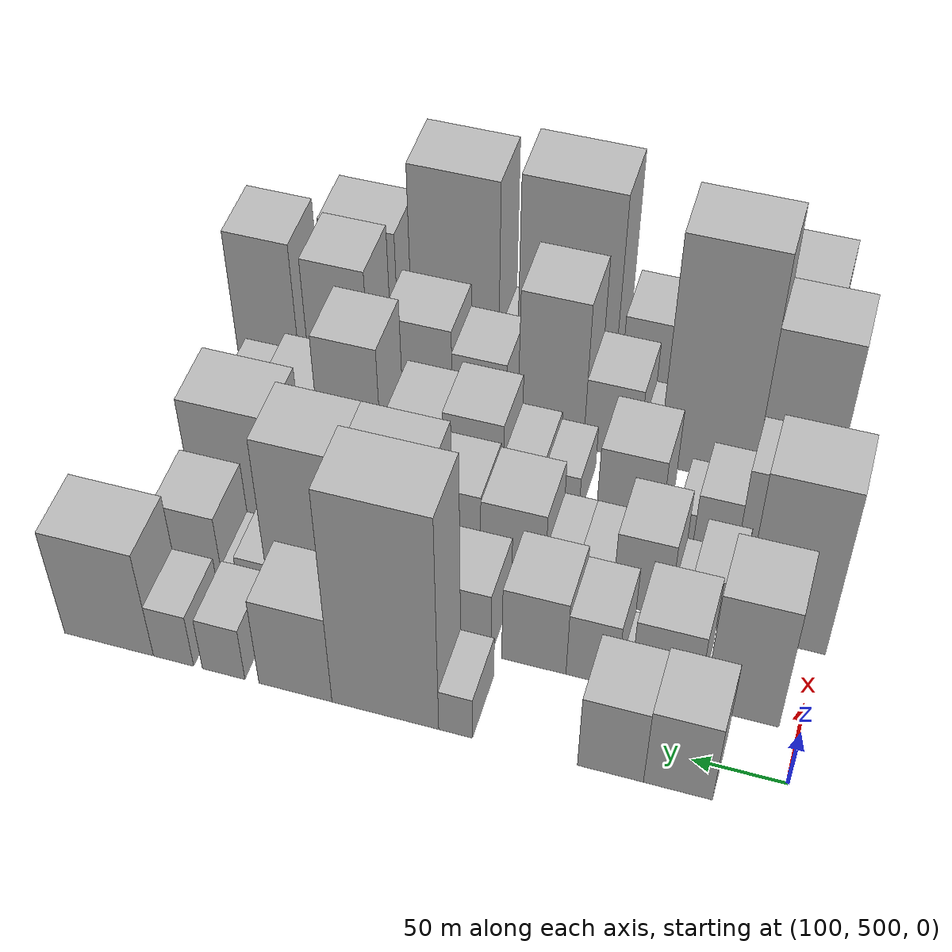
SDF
<sdf version="1.6">
 <world name="default">
  <model name="building_42">
   <static>1</static>
   <pose>100.0000 553.1623 0 0.000000 0.000000 0.000000</pose>
   <link name="link">
    <pose>0 0 33.00 0 0 0</pose>
    <collision name="collision"><geometry><box><size>40.0000 36.0011 66.0000</size></box></geometry></collision>
    <visual name="visual">
     <cast_shadows>0</cast_shadows>
     <geometry><box><size>40.0000 36.0011 66.0000</size></box></geometry>
     <material>
      <script>
       <uri>model://HANNAS_wall/materials/scripts</uri>
       <uri>model://HANNAS_wall/materials/textures</uri>
       <name>vrc/HANNAS_wall</name>
      </script>
     </material>
    </visual>
   </link>
  </model>
  <model name="building_43">
   <static>1</static>
   <pose>100.0000 588.6153 0 0.000000 0.000000 0.000000</pose>
   <link name="link">
    <pose>0 0 31.50 0 0 0</pose>
    <collision name="collision"><geometry><box><size>40.0000 34.9048 63.0000</size></box></geometry></collision>
    <visual name="visual">
     <cast_shadows>0</cast_shadows>
     <geometry><box><size>40.0000 34.9048 63.0000</size></box></geometry>
     <material>
      <script>
       <uri>model://HANNAS_wall/materials/scripts</uri>
       <uri>model://HANNAS_wall/materials/textures</uri>
       <name>vrc/HANNAS_wall</name>
      </script>
     </material>
    </visual>
   </link>
  </model>
  <model name="building_44">
   <static>1</static>
   <pose>100.0000 671.7362 0 0.000000 0.000000 0.000000</pose>
   <link name="link">
    <pose>0 0 18.00 0 0 0</pose>
    <collision name="collision"><geometry><box><size>40.0000 18.4457 36.0000</size></box></geometry></collision>
    <visual name="visual">
     <cast_shadows>0</cast_shadows>
     <geometry><box><size>40.0000 18.4457 36.0000</size></box></geometry>
     <material>
      <script>
       <uri>model://HANNAS_wall/materials/scripts</uri>
       <uri>model://HANNAS_wall/materials/textures</uri>
       <name>vrc/HANNAS_wall</name>
      </script>
     </material>
    </visual>
   </link>
  </model>
  <model name="building_45">
   <static>1</static>
   <pose>100.0000 710.5168 0 0.000000 0.000000 0.000000</pose>
   <link name="link">
    <pose>0 0 90.00 0 0 0</pose>
    <collision name="collision"><geometry><box><size>40.0000 59.1155 180.0000</size></box></geometry></collision>
    <visual name="visual">
     <cast_shadows>0</cast_shadows>
     <geometry><box><size>40.0000 59.1155 180.0000</size></box></geometry>
     <material>
      <script>
       <uri>model://HANNAS_wall/materials/scripts</uri>
       <uri>model://HANNAS_wall/materials/textures</uri>
       <name>vrc/HANNAS_wall</name>
      </script>
     </material>
    </visual>
   </link>
  </model>
  <model name="building_46">
   <static>1</static>
   <pose>100.0000 760.7020 0 0.000000 0.000000 0.000000</pose>
   <link name="link">
    <pose>0 0 37.50 0 0 0</pose>
    <collision name="collision"><geometry><box><size>40.0000 41.2551 75.0000</size></box></geometry></collision>
    <visual name="visual">
     <cast_shadows>0</cast_shadows>
     <geometry><box><size>40.0000 41.2551 75.0000</size></box></geometry>
     <material>
      <script>
       <uri>model://HANNAS_wall/materials/scripts</uri>
       <uri>model://HANNAS_wall/materials/textures</uri>
       <name>vrc/HANNAS_wall</name>
      </script>
     </material>
    </visual>
   </link>
  </model>
  <model name="building_47">
   <static>1</static>
   <pose>100.0000 801.5281 0 0.000000 0.000000 0.000000</pose>
   <link name="link">
    <pose>0 0 22.50 0 0 0</pose>
    <collision name="collision"><geometry><box><size>40.0000 24.3972 45.0000</size></box></geometry></collision>
    <visual name="visual">
     <cast_shadows>0</cast_shadows>
     <geometry><box><size>40.0000 24.3972 45.0000</size></box></geometry>
     <material>
      <script>
       <uri>model://HANNAS_wall/materials/scripts</uri>
       <uri>model://HANNAS_wall/materials/textures</uri>
       <name>vrc/HANNAS_wall</name>
      </script>
     </material>
    </visual>
   </link>
  </model>
  <model name="building_48">
   <static>1</static>
   <pose>100.0000 830.3851 0 0.000000 0.000000 0.000000</pose>
   <link name="link">
    <pose>0 0 22.50 0 0 0</pose>
    <collision name="collision"><geometry><box><size>40.0000 23.3167 45.0000</size></box></geometry></collision>
    <visual name="visual">
     <cast_shadows>0</cast_shadows>
     <geometry><box><size>40.0000 23.3167 45.0000</size></box></geometry>
     <material>
      <script>
       <uri>model://HANNAS_wall/materials/scripts</uri>
       <uri>model://HANNAS_wall/materials/textures</uri>
       <name>vrc/HANNAS_wall</name>
      </script>
     </material>
    </visual>
   </link>
  </model>
  <model name="building_49">
   <static>1</static>
   <pose>100.0000 868.0974 0 0.000000 0.000000 0.000000</pose>
   <link name="link">
    <pose>0 0 45.00 0 0 0</pose>
    <collision name="collision"><geometry><box><size>40.0000 52.1080 90.0000</size></box></geometry></collision>
    <visual name="visual">
     <cast_shadows>0</cast_shadows>
     <geometry><box><size>40.0000 52.1080 90.0000</size></box></geometry>
     <material>
      <script>
       <uri>model://HANNAS_wall/materials/scripts</uri>
       <uri>model://HANNAS_wall/materials/textures</uri>
       <name>vrc/HANNAS_wall</name>
      </script>
     </material>
    </visual>
   </link>
  </model>
  <model name="building_90">
   <static>1</static>
   <pose>152.0000 530.7991 0 0.000000 0.000000 0.000000</pose>
   <link name="link">
    <pose>0 0 51.00 0 0 0</pose>
    <collision name="collision"><geometry><box><size>40.0000 40.4098 102.0000</size></box></geometry></collision>
    <visual name="visual">
     <cast_shadows>0</cast_shadows>
     <geometry><box><size>40.0000 40.4098 102.0000</size></box></geometry>
     <material>
      <script>
       <uri>model://HANNAS_wall/materials/scripts</uri>
       <uri>model://HANNAS_wall/materials/textures</uri>
       <name>vrc/HANNAS_wall</name>
      </script>
     </material>
    </visual>
   </link>
  </model>
  <model name="building_91">
   <static>1</static>
   <pose>152.0000 572.4264 0 0.000000 0.000000 0.000000</pose>
   <link name="link">
    <pose>0 0 31.50 0 0 0</pose>
    <collision name="collision"><geometry><box><size>40.0000 36.8448 63.0000</size></box></geometry></collision>
    <visual name="visual">
     <cast_shadows>0</cast_shadows>
     <geometry><box><size>40.0000 36.8448 63.0000</size></box></geometry>
     <material>
      <script>
       <uri>model://HANNAS_wall/materials/scripts</uri>
       <uri>model://HANNAS_wall/materials/textures</uri>
       <name>vrc/HANNAS_wall</name>
      </script>
     </material>
    </visual>
   </link>
  </model>
  <model name="building_92">
   <static>1</static>
   <pose>152.0000 594.3121 0 0.000000 0.000000 0.000000</pose>
   <link name="link">
    <pose>0 0 7.50 0 0 0</pose>
    <collision name="collision"><geometry><box><size>40.0000 6.9264 15.0000</size></box></geometry></collision>
    <visual name="visual">
     <cast_shadows>0</cast_shadows>
     <geometry><box><size>40.0000 6.9264 15.0000</size></box></geometry>
     <material>
      <script>
       <uri>model://HANNAS_wall/materials/scripts</uri>
       <uri>model://HANNAS_wall/materials/textures</uri>
       <name>vrc/HANNAS_wall</name>
      </script>
     </material>
    </visual>
   </link>
  </model>
  <model name="building_93">
   <static>1</static>
   <pose>152.0000 611.7996 0 0.000000 0.000000 0.000000</pose>
   <link name="link">
    <pose>0 0 27.00 0 0 0</pose>
    <collision name="collision"><geometry><box><size>40.0000 28.0486 54.0000</size></box></geometry></collision>
    <visual name="visual">
     <cast_shadows>0</cast_shadows>
     <geometry><box><size>40.0000 28.0486 54.0000</size></box></geometry>
     <material>
      <script>
       <uri>model://HANNAS_wall/materials/scripts</uri>
       <uri>model://HANNAS_wall/materials/textures</uri>
       <name>vrc/HANNAS_wall</name>
      </script>
     </material>
    </visual>
   </link>
  </model>
  <model name="building_94">
   <static>1</static>
   <pose>152.0000 643.7170 0 0.000000 0.000000 0.000000</pose>
   <link name="link">
    <pose>0 0 31.50 0 0 0</pose>
    <collision name="collision"><geometry><box><size>40.0000 35.7862 63.0000</size></box></geometry></collision>
    <visual name="visual">
     <cast_shadows>0</cast_shadows>
     <geometry><box><size>40.0000 35.7862 63.0000</size></box></geometry>
     <material>
      <script>
       <uri>model://HANNAS_wall/materials/scripts</uri>
       <uri>model://HANNAS_wall/materials/textures</uri>
       <name>vrc/HANNAS_wall</name>
      </script>
     </material>
    </visual>
   </link>
  </model>
  <model name="building_95">
   <static>1</static>
   <pose>152.0000 682.9375 0 0.000000 0.000000 0.000000</pose>
   <link name="link">
    <pose>0 0 27.00 0 0 0</pose>
    <collision name="collision"><geometry><box><size>40.0000 30.6548 54.0000</size></box></geometry></collision>
    <visual name="visual">
     <cast_shadows>0</cast_shadows>
     <geometry><box><size>40.0000 30.6548 54.0000</size></box></geometry>
     <material>
      <script>
       <uri>model://HANNAS_wall/materials/scripts</uri>
       <uri>model://HANNAS_wall/materials/textures</uri>
       <name>vrc/HANNAS_wall</name>
      </script>
     </material>
    </visual>
   </link>
  </model>
  <model name="building_96">
   <static>1</static>
   <pose>152.0000 724.8358 0 0.000000 0.000000 0.000000</pose>
   <link name="link">
    <pose>0 0 69.00 0 0 0</pose>
    <collision name="collision"><geometry><box><size>40.0000 47.1418 138.0000</size></box></geometry></collision>
    <visual name="visual">
     <cast_shadows>0</cast_shadows>
     <geometry><box><size>40.0000 47.1418 138.0000</size></box></geometry>
     <material>
      <script>
       <uri>model://HANNAS_wall/materials/scripts</uri>
       <uri>model://HANNAS_wall/materials/textures</uri>
       <name>vrc/HANNAS_wall</name>
      </script>
     </material>
    </visual>
   </link>
  </model>
  <model name="building_97">
   <static>1</static>
   <pose>152.0000 771.4681 0 0.000000 0.000000 0.000000</pose>
   <link name="link">
    <pose>0 0 69.00 0 0 0</pose>
    <collision name="collision"><geometry><box><size>40.0000 46.1229 138.0000</size></box></geometry></collision>
    <visual name="visual">
     <cast_shadows>0</cast_shadows>
     <geometry><box><size>40.0000 46.1229 138.0000</size></box></geometry>
     <material>
      <script>
       <uri>model://HANNAS_wall/materials/scripts</uri>
       <uri>model://HANNAS_wall/materials/textures</uri>
       <name>vrc/HANNAS_wall</name>
      </script>
     </material>
    </visual>
   </link>
  </model>
  <model name="building_98">
   <static>1</static>
   <pose>152.0000 803.7005 0 0.000000 0.000000 0.000000</pose>
   <link name="link">
    <pose>0 0 16.50 0 0 0</pose>
    <collision name="collision"><geometry><box><size>40.0000 18.3418 33.0000</size></box></geometry></collision>
    <visual name="visual">
     <cast_shadows>0</cast_shadows>
     <geometry><box><size>40.0000 18.3418 33.0000</size></box></geometry>
     <material>
      <script>
       <uri>model://HANNAS_wall/materials/scripts</uri>
       <uri>model://HANNAS_wall/materials/textures</uri>
       <name>vrc/HANNAS_wall</name>
      </script>
     </material>
    </visual>
   </link>
  </model>
  <model name="building_99">
   <static>1</static>
   <pose>152.0000 817.2399 0 0.000000 0.000000 0.000000</pose>
   <link name="link">
    <pose>0 0 10.50 0 0 0</pose>
    <collision name="collision"><geometry><box><size>40.0000 8.7371 21.0000</size></box></geometry></collision>
    <visual name="visual">
     <cast_shadows>0</cast_shadows>
     <geometry><box><size>40.0000 8.7371 21.0000</size></box></geometry>
     <material>
      <script>
       <uri>model://HANNAS_wall/materials/scripts</uri>
       <uri>model://HANNAS_wall/materials/textures</uri>
       <name>vrc/HANNAS_wall</name>
      </script>
     </material>
    </visual>
   </link>
  </model>
  <model name="building_100">
   <static>1</static>
   <pose>152.0000 839.2021 0 0.000000 0.000000 0.000000</pose>
   <link name="link">
    <pose>0 0 31.50 0 0 0</pose>
    <collision name="collision"><geometry><box><size>40.0000 35.1873 63.0000</size></box></geometry></collision>
    <visual name="visual">
     <cast_shadows>0</cast_shadows>
     <geometry><box><size>40.0000 35.1873 63.0000</size></box></geometry>
     <material>
      <script>
       <uri>model://HANNAS_wall/materials/scripts</uri>
       <uri>model://HANNAS_wall/materials/textures</uri>
       <name>vrc/HANNAS_wall</name>
      </script>
     </material>
    </visual>
   </link>
  </model>
  <model name="building_101">
   <static>1</static>
   <pose>152.0000 860.0500 0 0.000000 0.000000 0.000000</pose>
   <link name="link">
    <pose>0 0 7.50 0 0 0</pose>
    <collision name="collision"><geometry><box><size>40.0000 6.5086 15.0000</size></box></geometry></collision>
    <visual name="visual">
     <cast_shadows>0</cast_shadows>
     <geometry><box><size>40.0000 6.5086 15.0000</size></box></geometry>
     <material>
      <script>
       <uri>model://HANNAS_wall/materials/scripts</uri>
       <uri>model://HANNAS_wall/materials/textures</uri>
       <name>vrc/HANNAS_wall</name>
      </script>
     </material>
    </visual>
   </link>
  </model>
  <model name="building_143">
   <static>1</static>
   <pose>204.0000 518.3463 0 0.000000 0.000000 0.000000</pose>
   <link name="link">
    <pose>0 0 69.00 0 0 0</pose>
    <collision name="collision"><geometry><box><size>40.0000 47.1675 138.0000</size></box></geometry></collision>
    <visual name="visual">
     <cast_shadows>0</cast_shadows>
     <geometry><box><size>40.0000 47.1675 138.0000</size></box></geometry>
     <material>
      <script>
       <uri>model://HANNAS_wall/materials/scripts</uri>
       <uri>model://HANNAS_wall/materials/textures</uri>
       <name>vrc/HANNAS_wall</name>
      </script>
     </material>
    </visual>
   </link>
  </model>
  <model name="building_144">
   <static>1</static>
   <pose>204.0000 559.0554 0 0.000000 0.000000 0.000000</pose>
   <link name="link">
    <pose>0 0 21.00 0 0 0</pose>
    <collision name="collision"><geometry><box><size>40.0000 24.2507 42.0000</size></box></geometry></collision>
    <visual name="visual">
     <cast_shadows>0</cast_shadows>
     <geometry><box><size>40.0000 24.2507 42.0000</size></box></geometry>
     <material>
      <script>
       <uri>model://HANNAS_wall/materials/scripts</uri>
       <uri>model://HANNAS_wall/materials/textures</uri>
       <name>vrc/HANNAS_wall</name>
      </script>
     </material>
    </visual>
   </link>
  </model>
  <model name="building_145">
   <static>1</static>
   <pose>204.0000 576.1037 0 0.000000 0.000000 0.000000</pose>
   <link name="link">
    <pose>0 0 10.50 0 0 0</pose>
    <collision name="collision"><geometry><box><size>40.0000 9.8460 21.0000</size></box></geometry></collision>
    <visual name="visual">
     <cast_shadows>0</cast_shadows>
     <geometry><box><size>40.0000 9.8460 21.0000</size></box></geometry>
     <material>
      <script>
       <uri>model://HANNAS_wall/materials/scripts</uri>
       <uri>model://HANNAS_wall/materials/textures</uri>
       <name>vrc/HANNAS_wall</name>
      </script>
     </material>
    </visual>
   </link>
  </model>
  <model name="building_146">
   <static>1</static>
   <pose>204.0000 597.1483 0 0.000000 0.000000 0.000000</pose>
   <link name="link">
    <pose>0 0 31.50 0 0 0</pose>
    <collision name="collision"><geometry><box><size>40.0000 32.2430 63.0000</size></box></geometry></collision>
    <visual name="visual">
     <cast_shadows>0</cast_shadows>
     <geometry><box><size>40.0000 32.2430 63.0000</size></box></geometry>
     <material>
      <script>
       <uri>model://HANNAS_wall/materials/scripts</uri>
       <uri>model://HANNAS_wall/materials/textures</uri>
       <name>vrc/HANNAS_wall</name>
      </script>
     </material>
    </visual>
   </link>
  </model>
  <model name="building_147">
   <static>1</static>
   <pose>204.0000 623.0766 0 0.000000 0.000000 0.000000</pose>
   <link name="link">
    <pose>0 0 18.00 0 0 0</pose>
    <collision name="collision"><geometry><box><size>40.0000 19.6137 36.0000</size></box></geometry></collision>
    <visual name="visual">
     <cast_shadows>0</cast_shadows>
     <geometry><box><size>40.0000 19.6137 36.0000</size></box></geometry>
     <material>
      <script>
       <uri>model://HANNAS_wall/materials/scripts</uri>
       <uri>model://HANNAS_wall/materials/textures</uri>
       <name>vrc/HANNAS_wall</name>
      </script>
     </material>
    </visual>
   </link>
  </model>
  <model name="building_148">
   <static>1</static>
   <pose>204.0000 642.2851 0 0.000000 0.000000 0.000000</pose>
   <link name="link">
    <pose>0 0 18.00 0 0 0</pose>
    <collision name="collision"><geometry><box><size>40.0000 18.8034 36.0000</size></box></geometry></collision>
    <visual name="visual">
     <cast_shadows>0</cast_shadows>
     <geometry><box><size>40.0000 18.8034 36.0000</size></box></geometry>
     <material>
      <script>
       <uri>model://HANNAS_wall/materials/scripts</uri>
       <uri>model://HANNAS_wall/materials/textures</uri>
       <name>vrc/HANNAS_wall</name>
      </script>
     </material>
    </visual>
   </link>
  </model>
  <model name="building_149">
   <static>1</static>
   <pose>204.0000 670.2617 0 0.000000 0.000000 0.000000</pose>
   <link name="link">
    <pose>0 0 31.50 0 0 0</pose>
    <collision name="collision"><geometry><box><size>40.0000 37.1498 63.0000</size></box></geometry></collision>
    <visual name="visual">
     <cast_shadows>0</cast_shadows>
     <geometry><box><size>40.0000 37.1498 63.0000</size></box></geometry>
     <material>
      <script>
       <uri>model://HANNAS_wall/materials/scripts</uri>
       <uri>model://HANNAS_wall/materials/textures</uri>
       <name>vrc/HANNAS_wall</name>
      </script>
     </material>
    </visual>
   </link>
  </model>
  <model name="building_150">
   <static>1</static>
   <pose>204.0000 708.4751 0 0.000000 0.000000 0.000000</pose>
   <link name="link">
    <pose>0 0 33.00 0 0 0</pose>
    <collision name="collision"><geometry><box><size>40.0000 39.2770 66.0000</size></box></geometry></collision>
    <visual name="visual">
     <cast_shadows>0</cast_shadows>
     <geometry><box><size>40.0000 39.2770 66.0000</size></box></geometry>
     <material>
      <script>
       <uri>model://HANNAS_wall/materials/scripts</uri>
       <uri>model://HANNAS_wall/materials/textures</uri>
       <name>vrc/HANNAS_wall</name>
      </script>
     </material>
    </visual>
   </link>
  </model>
  <model name="building_151">
   <static>1</static>
   <pose>204.0000 742.3634 0 0.000000 0.000000 0.000000</pose>
   <link name="link">
    <pose>0 0 27.00 0 0 0</pose>
    <collision name="collision"><geometry><box><size>40.0000 28.4996 54.0000</size></box></geometry></collision>
    <visual name="visual">
     <cast_shadows>0</cast_shadows>
     <geometry><box><size>40.0000 28.4996 54.0000</size></box></geometry>
     <material>
      <script>
       <uri>model://HANNAS_wall/materials/scripts</uri>
       <uri>model://HANNAS_wall/materials/textures</uri>
       <name>vrc/HANNAS_wall</name>
      </script>
     </material>
    </visual>
   </link>
  </model>
  <model name="building_152">
   <static>1</static>
   <pose>204.0000 777.2109 0 0.000000 0.000000 0.000000</pose>
   <link name="link">
    <pose>0 0 36.00 0 0 0</pose>
    <collision name="collision"><geometry><box><size>40.0000 41.1955 72.0000</size></box></geometry></collision>
    <visual name="visual">
     <cast_shadows>0</cast_shadows>
     <geometry><box><size>40.0000 41.1955 72.0000</size></box></geometry>
     <material>
      <script>
       <uri>model://HANNAS_wall/materials/scripts</uri>
       <uri>model://HANNAS_wall/materials/textures</uri>
       <name>vrc/HANNAS_wall</name>
      </script>
     </material>
    </visual>
   </link>
  </model>
  <model name="building_153">
   <static>1</static>
   <pose>204.0000 834.5268 0 0.000000 0.000000 0.000000</pose>
   <link name="link">
    <pose>0 0 45.00 0 0 0</pose>
    <collision name="collision"><geometry><box><size>40.0000 53.4363 90.0000</size></box></geometry></collision>
    <visual name="visual">
     <cast_shadows>0</cast_shadows>
     <geometry><box><size>40.0000 53.4363 90.0000</size></box></geometry>
     <material>
      <script>
       <uri>model://HANNAS_wall/materials/scripts</uri>
       <uri>model://HANNAS_wall/materials/textures</uri>
       <name>vrc/HANNAS_wall</name>
      </script>
     </material>
    </visual>
   </link>
  </model>
  <model name="building_199">
   <static>1</static>
   <pose>256.0000 532.1031 0 0.000000 0.000000 0.000000</pose>
   <link name="link">
    <pose>0 0 37.50 0 0 0</pose>
    <collision name="collision"><geometry><box><size>40.0000 43.3547 75.0000</size></box></geometry></collision>
    <visual name="visual">
     <cast_shadows>0</cast_shadows>
     <geometry><box><size>40.0000 43.3547 75.0000</size></box></geometry>
     <material>
      <script>
       <uri>model://HANNAS_wall/materials/scripts</uri>
       <uri>model://HANNAS_wall/materials/textures</uri>
       <name>vrc/HANNAS_wall</name>
      </script>
     </material>
    </visual>
   </link>
  </model>
  <model name="building_200">
   <static>1</static>
   <pose>256.0000 566.3439 0 0.000000 0.000000 0.000000</pose>
   <link name="link">
    <pose>0 0 22.50 0 0 0</pose>
    <collision name="collision"><geometry><box><size>40.0000 25.1268 45.0000</size></box></geometry></collision>
    <visual name="visual">
     <cast_shadows>0</cast_shadows>
     <geometry><box><size>40.0000 25.1268 45.0000</size></box></geometry>
     <material>
      <script>
       <uri>model://HANNAS_wall/materials/scripts</uri>
       <uri>model://HANNAS_wall/materials/textures</uri>
       <name>vrc/HANNAS_wall</name>
      </script>
     </material>
    </visual>
   </link>
  </model>
  <model name="building_201">
   <static>1</static>
   <pose>256.0000 584.4067 0 0.000000 0.000000 0.000000</pose>
   <link name="link">
    <pose>0 0 13.50 0 0 0</pose>
    <collision name="collision"><geometry><box><size>40.0000 10.9988 27.0000</size></box></geometry></collision>
    <visual name="visual">
     <cast_shadows>0</cast_shadows>
     <geometry><box><size>40.0000 10.9988 27.0000</size></box></geometry>
     <material>
      <script>
       <uri>model://HANNAS_wall/materials/scripts</uri>
       <uri>model://HANNAS_wall/materials/textures</uri>
       <name>vrc/HANNAS_wall</name>
      </script>
     </material>
    </visual>
   </link>
  </model>
  <model name="building_202">
   <static>1</static>
   <pose>256.0000 616.7484 0 0.000000 0.000000 0.000000</pose>
   <link name="link">
    <pose>0 0 33.00 0 0 0</pose>
    <collision name="collision"><geometry><box><size>40.0000 37.6845 66.0000</size></box></geometry></collision>
    <visual name="visual">
     <cast_shadows>0</cast_shadows>
     <geometry><box><size>40.0000 37.6845 66.0000</size></box></geometry>
     <material>
      <script>
       <uri>model://HANNAS_wall/materials/scripts</uri>
       <uri>model://HANNAS_wall/materials/textures</uri>
       <name>vrc/HANNAS_wall</name>
      </script>
     </material>
    </visual>
   </link>
  </model>
  <model name="building_203">
   <static>1</static>
   <pose>256.0000 656.3177 0 0.000000 0.000000 0.000000</pose>
   <link name="link">
    <pose>0 0 18.00 0 0 0</pose>
    <collision name="collision"><geometry><box><size>40.0000 21.4541 36.0000</size></box></geometry></collision>
    <visual name="visual">
     <cast_shadows>0</cast_shadows>
     <geometry><box><size>40.0000 21.4541 36.0000</size></box></geometry>
     <material>
      <script>
       <uri>model://HANNAS_wall/materials/scripts</uri>
       <uri>model://HANNAS_wall/materials/textures</uri>
       <name>vrc/HANNAS_wall</name>
      </script>
     </material>
    </visual>
   </link>
  </model>
  <model name="building_204">
   <static>1</static>
   <pose>256.0000 678.8230 0 0.000000 0.000000 0.000000</pose>
   <link name="link">
    <pose>0 0 21.00 0 0 0</pose>
    <collision name="collision"><geometry><box><size>40.0000 23.5564 42.0000</size></box></geometry></collision>
    <visual name="visual">
     <cast_shadows>0</cast_shadows>
     <geometry><box><size>40.0000 23.5564 42.0000</size></box></geometry>
     <material>
      <script>
       <uri>model://HANNAS_wall/materials/scripts</uri>
       <uri>model://HANNAS_wall/materials/textures</uri>
       <name>vrc/HANNAS_wall</name>
      </script>
     </material>
    </visual>
   </link>
  </model>
  <model name="building_205">
   <static>1</static>
   <pose>256.0000 708.5615 0 0.000000 0.000000 0.000000</pose>
   <link name="link">
    <pose>0 0 33.00 0 0 0</pose>
    <collision name="collision"><geometry><box><size>40.0000 35.9207 66.0000</size></box></geometry></collision>
    <visual name="visual">
     <cast_shadows>0</cast_shadows>
     <geometry><box><size>40.0000 35.9207 66.0000</size></box></geometry>
     <material>
      <script>
       <uri>model://HANNAS_wall/materials/scripts</uri>
       <uri>model://HANNAS_wall/materials/textures</uri>
       <name>vrc/HANNAS_wall</name>
      </script>
     </material>
    </visual>
   </link>
  </model>
  <model name="building_206">
   <static>1</static>
   <pose>256.0000 743.1003 0 0.000000 0.000000 0.000000</pose>
   <link name="link">
    <pose>0 0 28.50 0 0 0</pose>
    <collision name="collision"><geometry><box><size>40.0000 33.1569 57.0000</size></box></geometry></collision>
    <visual name="visual">
     <cast_shadows>0</cast_shadows>
     <geometry><box><size>40.0000 33.1569 57.0000</size></box></geometry>
     <material>
      <script>
       <uri>model://HANNAS_wall/materials/scripts</uri>
       <uri>model://HANNAS_wall/materials/textures</uri>
       <name>vrc/HANNAS_wall</name>
      </script>
     </material>
    </visual>
   </link>
  </model>
  <model name="building_207">
   <static>1</static>
   <pose>256.0000 782.7158 0 0.000000 0.000000 0.000000</pose>
   <link name="link">
    <pose>0 0 52.50 0 0 0</pose>
    <collision name="collision"><geometry><box><size>40.0000 38.0741 105.0000</size></box></geometry></collision>
    <visual name="visual">
     <cast_shadows>0</cast_shadows>
     <geometry><box><size>40.0000 38.0741 105.0000</size></box></geometry>
     <material>
      <script>
       <uri>model://HANNAS_wall/materials/scripts</uri>
       <uri>model://HANNAS_wall/materials/textures</uri>
       <name>vrc/HANNAS_wall</name>
      </script>
     </material>
    </visual>
   </link>
  </model>
  <model name="building_208">
   <static>1</static>
   <pose>256.0000 818.1021 0 0.000000 0.000000 0.000000</pose>
   <link name="link">
    <pose>0 0 28.50 0 0 0</pose>
    <collision name="collision"><geometry><box><size>40.0000 32.6985 57.0000</size></box></geometry></collision>
    <visual name="visual">
     <cast_shadows>0</cast_shadows>
     <geometry><box><size>40.0000 32.6985 57.0000</size></box></geometry>
     <material>
      <script>
       <uri>model://HANNAS_wall/materials/scripts</uri>
       <uri>model://HANNAS_wall/materials/textures</uri>
       <name>vrc/HANNAS_wall</name>
      </script>
     </material>
    </visual>
   </link>
  </model>
  <model name="building_209">
   <static>1</static>
   <pose>256.0000 847.3433 0 0.000000 0.000000 0.000000</pose>
   <link name="link">
    <pose>0 0 22.50 0 0 0</pose>
    <collision name="collision"><geometry><box><size>40.0000 25.7838 45.0000</size></box></geometry></collision>
    <visual name="visual">
     <cast_shadows>0</cast_shadows>
     <geometry><box><size>40.0000 25.7838 45.0000</size></box></geometry>
     <material>
      <script>
       <uri>model://HANNAS_wall/materials/scripts</uri>
       <uri>model://HANNAS_wall/materials/textures</uri>
       <name>vrc/HANNAS_wall</name>
      </script>
     </material>
    </visual>
   </link>
  </model>
  <model name="building_249">
   <static>1</static>
   <pose>308.0000 531.6793 0 0.000000 0.000000 0.000000</pose>
   <link name="link">
    <pose>0 0 66.00 0 0 0</pose>
    <collision name="collision"><geometry><box><size>40.0000 46.1051 132.0000</size></box></geometry></collision>
    <visual name="visual">
     <cast_shadows>0</cast_shadows>
     <geometry><box><size>40.0000 46.1051 132.0000</size></box></geometry>
     <material>
      <script>
       <uri>model://HANNAS_wall/materials/scripts</uri>
       <uri>model://HANNAS_wall/materials/textures</uri>
       <name>vrc/HANNAS_wall</name>
      </script>
     </material>
    </visual>
   </link>
  </model>
  <model name="building_250">
   <static>1</static>
   <pose>308.0000 582.9078 0 0.000000 0.000000 0.000000</pose>
   <link name="link">
    <pose>0 0 93.00 0 0 0</pose>
    <collision name="collision"><geometry><box><size>40.0000 56.3519 186.0000</size></box></geometry></collision>
    <visual name="visual">
     <cast_shadows>0</cast_shadows>
     <geometry><box><size>40.0000 56.3519 186.0000</size></box></geometry>
     <material>
      <script>
       <uri>model://HANNAS_wall/materials/scripts</uri>
       <uri>model://HANNAS_wall/materials/textures</uri>
       <name>vrc/HANNAS_wall</name>
      </script>
     </material>
    </visual>
   </link>
  </model>
  <model name="building_251">
   <static>1</static>
   <pose>308.0000 616.8440 0 0.000000 0.000000 0.000000</pose>
   <link name="link">
    <pose>0 0 13.50 0 0 0</pose>
    <collision name="collision"><geometry><box><size>40.0000 11.5205 27.0000</size></box></geometry></collision>
    <visual name="visual">
     <cast_shadows>0</cast_shadows>
     <geometry><box><size>40.0000 11.5205 27.0000</size></box></geometry>
     <material>
      <script>
       <uri>model://HANNAS_wall/materials/scripts</uri>
       <uri>model://HANNAS_wall/materials/textures</uri>
       <name>vrc/HANNAS_wall</name>
      </script>
     </material>
    </visual>
   </link>
  </model>
  <model name="building_252">
   <static>1</static>
   <pose>308.0000 639.3545 0 0.000000 0.000000 0.000000</pose>
   <link name="link">
    <pose>0 0 30.00 0 0 0</pose>
    <collision name="collision"><geometry><box><size>40.0000 33.5006 60.0000</size></box></geometry></collision>
    <visual name="visual">
     <cast_shadows>0</cast_shadows>
     <geometry><box><size>40.0000 33.5006 60.0000</size></box></geometry>
     <material>
      <script>
       <uri>model://HANNAS_wall/materials/scripts</uri>
       <uri>model://HANNAS_wall/materials/textures</uri>
       <name>vrc/HANNAS_wall</name>
      </script>
     </material>
    </visual>
   </link>
  </model>
  <model name="building_253">
   <static>1</static>
   <pose>308.0000 676.3342 0 0.000000 0.000000 0.000000</pose>
   <link name="link">
    <pose>0 0 60.00 0 0 0</pose>
    <collision name="collision"><geometry><box><size>40.0000 40.4588 120.0000</size></box></geometry></collision>
    <visual name="visual">
     <cast_shadows>0</cast_shadows>
     <geometry><box><size>40.0000 40.4588 120.0000</size></box></geometry>
     <material>
      <script>
       <uri>model://HANNAS_wall/materials/scripts</uri>
       <uri>model://HANNAS_wall/materials/textures</uri>
       <name>vrc/HANNAS_wall</name>
      </script>
     </material>
    </visual>
   </link>
  </model>
  <model name="building_254">
   <static>1</static>
   <pose>308.0000 720.2814 0 0.000000 0.000000 0.000000</pose>
   <link name="link">
    <pose>0 0 28.50 0 0 0</pose>
    <collision name="collision"><geometry><box><size>40.0000 33.4356 57.0000</size></box></geometry></collision>
    <visual name="visual">
     <cast_shadows>0</cast_shadows>
     <geometry><box><size>40.0000 33.4356 57.0000</size></box></geometry>
     <material>
      <script>
       <uri>model://HANNAS_wall/materials/scripts</uri>
       <uri>model://HANNAS_wall/materials/textures</uri>
       <name>vrc/HANNAS_wall</name>
      </script>
     </material>
    </visual>
   </link>
  </model>
  <model name="building_255">
   <static>1</static>
   <pose>308.0000 758.0893 0 0.000000 0.000000 0.000000</pose>
   <link name="link">
    <pose>0 0 37.50 0 0 0</pose>
    <collision name="collision"><geometry><box><size>40.0000 42.1802 75.0000</size></box></geometry></collision>
    <visual name="visual">
     <cast_shadows>0</cast_shadows>
     <geometry><box><size>40.0000 42.1802 75.0000</size></box></geometry>
     <material>
      <script>
       <uri>model://HANNAS_wall/materials/scripts</uri>
       <uri>model://HANNAS_wall/materials/textures</uri>
       <name>vrc/HANNAS_wall</name>
      </script>
     </material>
    </visual>
   </link>
  </model>
  <model name="building_256">
   <static>1</static>
   <pose>308.0000 807.4222 0 0.000000 0.000000 0.000000</pose>
   <link name="link">
    <pose>0 0 54.00 0 0 0</pose>
    <collision name="collision"><geometry><box><size>40.0000 38.4856 108.0000</size></box></geometry></collision>
    <visual name="visual">
     <cast_shadows>0</cast_shadows>
     <geometry><box><size>40.0000 38.4856 108.0000</size></box></geometry>
     <material>
      <script>
       <uri>model://HANNAS_wall/materials/scripts</uri>
       <uri>model://HANNAS_wall/materials/textures</uri>
       <name>vrc/HANNAS_wall</name>
      </script>
     </material>
    </visual>
   </link>
  </model>
  <model name="building_257">
   <static>1</static>
   <pose>308.0000 852.5367 0 0.000000 0.000000 0.000000</pose>
   <link name="link">
    <pose>0 0 58.50 0 0 0</pose>
    <collision name="collision"><geometry><box><size>40.0000 39.7433 117.0000</size></box></geometry></collision>
    <visual name="visual">
     <cast_shadows>0</cast_shadows>
     <geometry><box><size>40.0000 39.7433 117.0000</size></box></geometry>
     <material>
      <script>
       <uri>model://HANNAS_wall/materials/scripts</uri>
       <uri>model://HANNAS_wall/materials/textures</uri>
       <name>vrc/HANNAS_wall</name>
      </script>
     </material>
    </visual>
   </link>
  </model>
  <model name="building_294">
   <static>1</static>
   <pose>360.0000 522.0671 0 0.000000 0.000000 0.000000</pose>
   <link name="link">
    <pose>0 0 7.50 0 0 0</pose>
    <collision name="collision"><geometry><box><size>40.0000 6.6638 15.0000</size></box></geometry></collision>
    <visual name="visual">
     <cast_shadows>0</cast_shadows>
     <geometry><box><size>40.0000 6.6638 15.0000</size></box></geometry>
     <material>
      <script>
       <uri>model://HANNAS_wall/materials/scripts</uri>
       <uri>model://HANNAS_wall/materials/textures</uri>
       <name>vrc/HANNAS_wall</name>
      </script>
     </material>
    </visual>
   </link>
  </model>
  <model name="building_295">
   <static>1</static>
   <pose>360.0000 548.8821 0 0.000000 0.000000 0.000000</pose>
   <link name="link">
    <pose>0 0 60.00 0 0 0</pose>
    <collision name="collision"><geometry><box><size>40.0000 46.9662 120.0000</size></box></geometry></collision>
    <visual name="visual">
     <cast_shadows>0</cast_shadows>
     <geometry><box><size>40.0000 46.9662 120.0000</size></box></geometry>
     <material>
      <script>
       <uri>model://HANNAS_wall/materials/scripts</uri>
       <uri>model://HANNAS_wall/materials/textures</uri>
       <name>vrc/HANNAS_wall</name>
      </script>
     </material>
    </visual>
   </link>
  </model>
  <model name="building_296">
   <static>1</static>
   <pose>360.0000 592.8592 0 0.000000 0.000000 0.000000</pose>
   <link name="link">
    <pose>0 0 36.00 0 0 0</pose>
    <collision name="collision"><geometry><box><size>40.0000 40.9881 72.0000</size></box></geometry></collision>
    <visual name="visual">
     <cast_shadows>0</cast_shadows>
     <geometry><box><size>40.0000 40.9881 72.0000</size></box></geometry>
     <material>
      <script>
       <uri>model://HANNAS_wall/materials/scripts</uri>
       <uri>model://HANNAS_wall/materials/textures</uri>
       <name>vrc/HANNAS_wall</name>
      </script>
     </material>
    </visual>
   </link>
  </model>
  <model name="building_297">
   <static>1</static>
   <pose>360.0000 629.8231 0 0.000000 0.000000 0.000000</pose>
   <link name="link">
    <pose>0 0 31.50 0 0 0</pose>
    <collision name="collision"><geometry><box><size>40.0000 32.9396 63.0000</size></box></geometry></collision>
    <visual name="visual">
     <cast_shadows>0</cast_shadows>
     <geometry><box><size>40.0000 32.9396 63.0000</size></box></geometry>
     <material>
      <script>
       <uri>model://HANNAS_wall/materials/scripts</uri>
       <uri>model://HANNAS_wall/materials/textures</uri>
       <name>vrc/HANNAS_wall</name>
      </script>
     </material>
    </visual>
   </link>
  </model>
  <model name="building_298">
   <static>1</static>
   <pose>360.0000 680.7955 0 0.000000 0.000000 0.000000</pose>
   <link name="link">
    <pose>0 0 78.00 0 0 0</pose>
    <collision name="collision"><geometry><box><size>40.0000 61.0053 156.0000</size></box></geometry></collision>
    <visual name="visual">
     <cast_shadows>0</cast_shadows>
     <geometry><box><size>40.0000 61.0053 156.0000</size></box></geometry>
     <material>
      <script>
       <uri>model://HANNAS_wall/materials/scripts</uri>
       <uri>model://HANNAS_wall/materials/textures</uri>
       <name>vrc/HANNAS_wall</name>
      </script>
     </material>
    </visual>
   </link>
  </model>
  <model name="building_299">
   <static>1</static>
   <pose>360.0000 717.2240 0 0.000000 0.000000 0.000000</pose>
   <link name="link">
    <pose>0 0 13.50 0 0 0</pose>
    <collision name="collision"><geometry><box><size>40.0000 11.8516 27.0000</size></box></geometry></collision>
    <visual name="visual">
     <cast_shadows>0</cast_shadows>
     <geometry><box><size>40.0000 11.8516 27.0000</size></box></geometry>
     <material>
      <script>
       <uri>model://HANNAS_wall/materials/scripts</uri>
       <uri>model://HANNAS_wall/materials/textures</uri>
       <name>vrc/HANNAS_wall</name>
      </script>
     </material>
    </visual>
   </link>
  </model>
  <model name="building_300">
   <static>1</static>
   <pose>360.0000 750.9476 0 0.000000 0.000000 0.000000</pose>
   <link name="link">
    <pose>0 0 73.50 0 0 0</pose>
    <collision name="collision"><geometry><box><size>40.0000 55.5958 147.0000</size></box></geometry></collision>
    <visual name="visual">
     <cast_shadows>0</cast_shadows>
     <geometry><box><size>40.0000 55.5958 147.0000</size></box></geometry>
     <material>
      <script>
       <uri>model://HANNAS_wall/materials/scripts</uri>
       <uri>model://HANNAS_wall/materials/textures</uri>
       <name>vrc/HANNAS_wall</name>
      </script>
     </material>
    </visual>
   </link>
  </model>
  <model name="building_301">
   <static>1</static>
   <pose>360.0000 811.5826 0 0.000000 0.000000 0.000000</pose>
   <link name="link">
    <pose>0 0 45.00 0 0 0</pose>
    <collision name="collision"><geometry><box><size>40.0000 47.6741 90.0000</size></box></geometry></collision>
    <visual name="visual">
     <cast_shadows>0</cast_shadows>
     <geometry><box><size>40.0000 47.6741 90.0000</size></box></geometry>
     <material>
      <script>
       <uri>model://HANNAS_wall/materials/scripts</uri>
       <uri>model://HANNAS_wall/materials/textures</uri>
       <name>vrc/HANNAS_wall</name>
      </script>
     </material>
    </visual>
   </link>
  </model>
  <model name="building_302">
   <static>1</static>
   <pose>360.0000 854.1512 0 0.000000 0.000000 0.000000</pose>
   <link name="link">
    <pose>0 0 19.50 0 0 0</pose>
    <collision name="collision"><geometry><box><size>40.0000 21.4630 39.0000</size></box></geometry></collision>
    <visual name="visual">
     <cast_shadows>0</cast_shadows>
     <geometry><box><size>40.0000 21.4630 39.0000</size></box></geometry>
     <material>
      <script>
       <uri>model://HANNAS_wall/materials/scripts</uri>
       <uri>model://HANNAS_wall/materials/textures</uri>
       <name>vrc/HANNAS_wall</name>
      </script>
     </material>
    </visual>
   </link>
  </model>
 </world>
</sdf>
